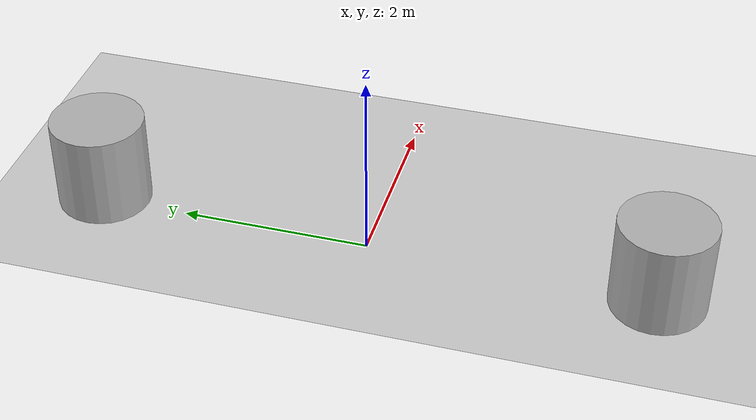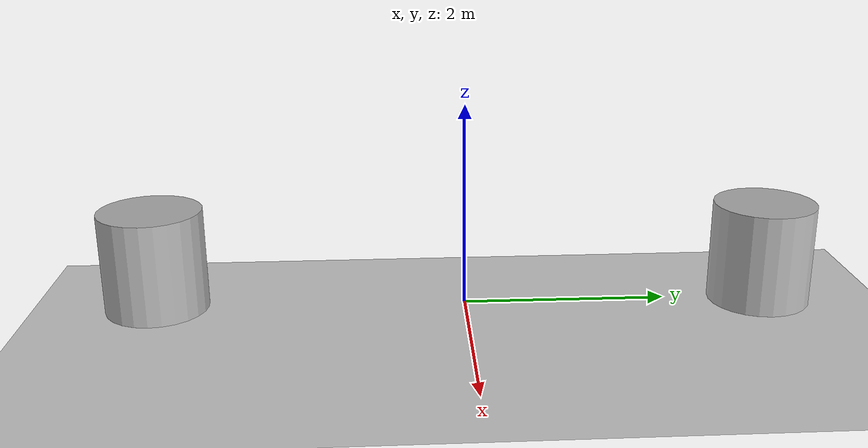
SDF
<sdf version='1.9'>
  <world name='empty'>
    <physics name='1ms' type='ignored'>
      <max_step_size>0.001</max_step_size>
      <real_time_factor>1</real_time_factor>
      <real_time_update_rate>1000</real_time_update_rate>
    </physics>
    <plugin name='ignition::gazebo::systems::Physics' filename='ignition-gazebo-physics-system'/>
    <plugin name='ignition::gazebo::systems::UserCommands' filename='ignition-gazebo-user-commands-system'/>
    <plugin name='ignition::gazebo::systems::SceneBroadcaster' filename='ignition-gazebo-scene-broadcaster-system'/>
    <plugin name='ignition::gazebo::systems::Contact' filename='ignition-gazebo-contact-system'/>
    <gravity>0 0 -9.8</gravity>
    <magnetic_field>6e-06 2.3e-05 -4.2e-05</magnetic_field>
    <atmosphere type='adiabatic'/>
    <scene>
      <ambient>0.4 0.4 0.4 1</ambient>
      <background>0.7 0.7 0.7 1</background>
      <shadows>true</shadows>
    </scene>
    <model name='ground_plane'>
      <static>true</static>
      <link name='link'>
        <collision name='collision'>
          <geometry>
            <plane>
              <normal>0 0 1</normal>
              <size>100 100</size>
            </plane>
          </geometry>
          <surface>
            <friction>
              <ode/>
            </friction>
            <bounce/>
            <contact/>
          </surface>
        </collision>
        <visual name='visual'>
          <geometry>
            <plane>
              <normal>0 0 1</normal>
              <size>100 100</size>
            </plane>
          </geometry>
          <material>
            <ambient>0.8 0.8 0.8 1</ambient>
            <diffuse>0.8 0.8 0.8 1</diffuse>
            <specular>0.8 0.8 0.8 1</specular>
          </material>
        </visual>
        <pose>0 0 0 0 -0 0</pose>
        <inertial>
          <pose>0 0 0 0 -0 0</pose>
          <mass>1</mass>
          <inertia>
            <ixx>1</ixx>
            <ixy>0</ixy>
            <ixz>0</ixz>
            <iyy>1</iyy>
            <iyz>0</iyz>
            <izz>1</izz>
          </inertia>
        </inertial>
        <enable_wind>false</enable_wind>
      </link>
      <pose>0 0 0 0 -0 0</pose>
      <self_collide>false</self_collide>
    </model>
    <model name="towers">
      <plugin filename="tot_plugin" name="tot_system">
        <towerA>towerA</towerA>
        <towerB>towerB</towerB>
      </plugin>
      <model name='towerA'>
        <pose>0.066472 2.94969 0.5 0 -0 0</pose>
        <link name='cylinder_link'>
          <inertial>
            <inertia>
              <ixx>0.14580000000000001</ixx>
              <ixy>0</ixy>
              <ixz>0</ixz>
              <iyy>0.14580000000000001</iyy>
              <iyz>0</iyz>
              <izz>0.125</izz>
            </inertia>
            <mass>1</mass>
            <pose>0 0 0 0 -0 0</pose>
          </inertial>
          <collision name='cylinder_collision'>
            <geometry>
              <cylinder>
                <radius>0.5</radius>
                <length>1</length>
              </cylinder>
            </geometry>
            <surface>
              <friction>
                <ode/>
              </friction>
              <bounce/>
              <contact/>
            </surface>
          </collision>
          <visual name='cylinder_visual'>
            <geometry>
              <cylinder>
                <radius>0.5</radius>
                <length>1</length>
              </cylinder>
            </geometry>
            <material>
              <ambient>0.3 0.3 0.3 1</ambient>
              <diffuse>0.7 0.7 0.7 1</diffuse>
              <specular>1 1 1 1</specular>
            </material>
          </visual>
          <pose>0 0 0 0 -0 0</pose>
          <enable_wind>false</enable_wind>
        </link>
        <static>false</static>
        <self_collide>false</self_collide>
      </model>
      <model name='towerB'>
        <pose>-0.047891 -3.02514 0.5 0 -0 0</pose>
        <link name='cylinder_link'>
          <inertial>
            <inertia>
              <ixx>0.14580000000000001</ixx>
              <ixy>0</ixy>
              <ixz>0</ixz>
              <iyy>0.14580000000000001</iyy>
              <iyz>0</iyz>
              <izz>0.125</izz>
            </inertia>
            <mass>1</mass>
            <pose>0 0 0 0 -0 0</pose>
          </inertial>
          <collision name='cylinder_collision'>
            <geometry>
              <cylinder>
                <radius>0.5</radius>
                <length>1</length>
              </cylinder>
            </geometry>
            <surface>
              <friction>
                <ode/>
              </friction>
              <bounce/>
              <contact/>
            </surface>
          </collision>
          <visual name='cylinder_visual'>
            <geometry>
              <cylinder>
                <radius>0.5</radius>
                <length>1</length>
              </cylinder>
            </geometry>
            <material>
              <ambient>0.3 0.3 0.3 1</ambient>
              <diffuse>0.7 0.7 0.7 1</diffuse>
              <specular>1 1 1 1</specular>
            </material>
          </visual>
          <pose>0 0 0 0 -0 0</pose>
          <enable_wind>false</enable_wind>
        </link>
        <static>false</static>
        <self_collide>false</self_collide>
      </model>
    </model>
    <light name='sun' type='directional'>
      <pose>0 0 10 0 -0 0</pose>
      <cast_shadows>true</cast_shadows>
      <intensity>1</intensity>
      <direction>-0.5 0.1 -0.9</direction>
      <diffuse>0.8 0.8 0.8 1</diffuse>
      <specular>0.2 0.2 0.2 1</specular>
      <attenuation>
        <range>1000</range>
        <linear>0.01</linear>
        <constant>0.90000000000000002</constant>
        <quadratic>0.001</quadratic>
      </attenuation>
      <spot>
        <inner_angle>0</inner_angle>
        <outer_angle>0</outer_angle>
        <falloff>0</falloff>
      </spot>
    </light>
  </world>
</sdf>
